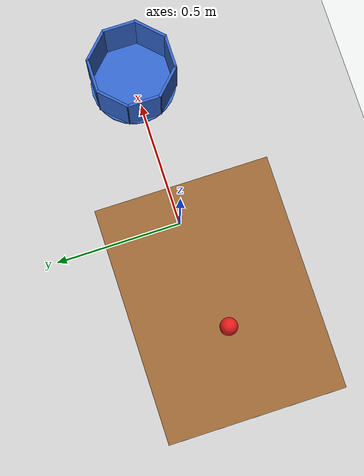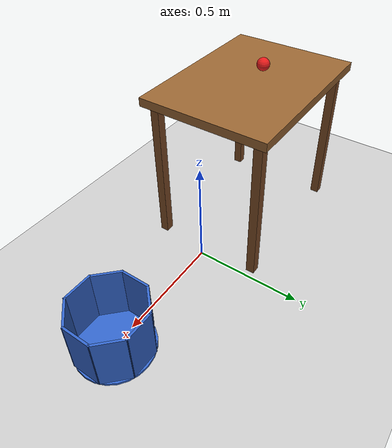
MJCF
<mujoco model="ball_table_bucket">
  <option timestep="0.002"/>
  <worldbody>
    <light name="sun" pos="0 0 3" dir="0 0 -1" directional="true"/>
    <geom name="floor" type="plane" size="3 3 0.1" rgba="0.8 0.8 0.8 1"/>

    <body name="table" pos="0 0 0">
      <geom name="table_top" type="box" pos="-0.4 0 0.73" size="0.4 0.3 0.02" rgba="0.6 0.4 0.2 1"/>
      <geom name="table_leg1" type="box" pos="-0.05 0.25 0.355" size="0.02 0.02 0.355" rgba="0.5 0.3 0.15 1"/>
      <geom name="table_leg2" type="box" pos="-0.05 -0.25 0.355" size="0.02 0.02 0.355" rgba="0.5 0.3 0.15 1"/>
      <geom name="table_leg3" type="box" pos="-0.75 0.25 0.355" size="0.02 0.02 0.355" rgba="0.5 0.3 0.15 1"/>
      <geom name="table_leg4" type="box" pos="-0.75 -0.25 0.355" size="0.02 0.02 0.355" rgba="0.5 0.3 0.15 1"/>
    </body>

    <body name="bucket" pos="0.6 0 0">
      <geom name="bucket_bottom" type="cylinder" pos="0 0 0.005" size="0.17 0.005" rgba="0.2 0.4 0.8 1"/>
      <geom name="bucket_wall0" type="box" pos="0.155 0 0.135" euler="0 0 0" size="0.005 0.068 0.125" rgba="0.2 0.4 0.8 1"/>
      <geom name="bucket_wall1" type="box" pos="0.1096 0.1096 0.135" euler="0 0 45" size="0.005 0.068 0.125" rgba="0.2 0.4 0.8 1"/>
      <geom name="bucket_wall2" type="box" pos="0 0.155 0.135" euler="0 0 90" size="0.005 0.068 0.125" rgba="0.2 0.4 0.8 1"/>
      <geom name="bucket_wall3" type="box" pos="-0.1096 0.1096 0.135" euler="0 0 135" size="0.005 0.068 0.125" rgba="0.2 0.4 0.8 1"/>
      <geom name="bucket_wall4" type="box" pos="-0.155 0 0.135" euler="0 0 180" size="0.005 0.068 0.125" rgba="0.2 0.4 0.8 1"/>
      <geom name="bucket_wall5" type="box" pos="-0.1096 -0.1096 0.135" euler="0 0 225" size="0.005 0.068 0.125" rgba="0.2 0.4 0.8 1"/>
      <geom name="bucket_wall6" type="box" pos="0 -0.155 0.135" euler="0 0 270" size="0.005 0.068 0.125" rgba="0.2 0.4 0.8 1"/>
      <geom name="bucket_wall7" type="box" pos="0.1096 -0.1096 0.135" euler="0 0 315" size="0.005 0.068 0.125" rgba="0.2 0.4 0.8 1"/>
    </body>

    <body name="ball" pos="-0.5 0 0.78">
      <freejoint name="ball_free"/>
      <geom name="ball" type="sphere" size="0.03" mass="0.1" rgba="0.9 0.1 0.1 1"/>
    </body>
  </worldbody>

  <keyframe>
    <key name="start" qpos="-0.5 0 0.78 1 0 0 0" qvel="1.6 0 0 0 53.333 0"/>
  </keyframe>
</mujoco>
